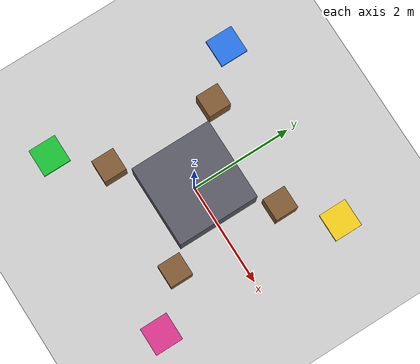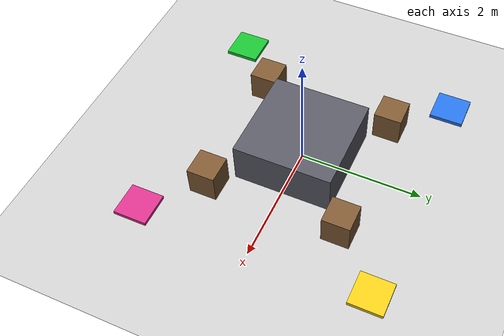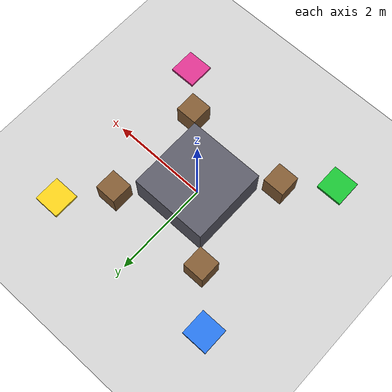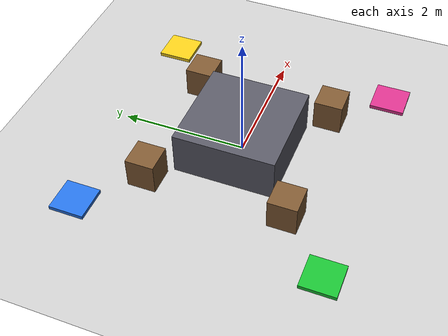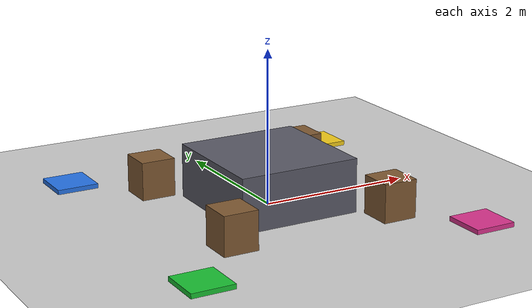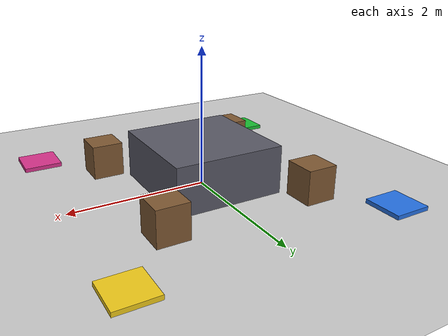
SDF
<sdf version="1.8">
 <world name="default">
  <physics type="ode">
   <real_time_update_rate>1000.0</real_time_update_rate>
   <max_step_size>0.001</max_step_size>
   <real_time_factor>1</real_time_factor>
   <ode>
    <solver>
     <type>quick</type>
     <iters>150</iters>
     <precon_iters>0</precon_iters>
     <sor>1.400000</sor>
     <use_dynamic_moi_rescaling>1</use_dynamic_moi_rescaling>
    </solver>
    <constraints>
     <cfm>0.00001</cfm>
     <erp>0.2</erp>
     <contact_max_correcting_vel>2000.000000</contact_max_correcting_vel>
     <contact_surface_layer>0.01000</contact_surface_layer>
    </constraints>
   </ode>
  </physics>
  <plugin filename="gz-sim-physics-system" name="gz::sim::systems::Physics"/>
  <plugin filename="gz-sim-user-commands-system" name="gz::sim::systems::UserCommands"/>
  <plugin filename="gz-sim-scene-broadcaster-system" name="gz::sim::systems::SceneBroadcaster"/>
  <plugin filename="gz-sim-sensors-system" name="gz::sim::systems::Sensors">
   <render_engine>ogre2</render_engine>
  </plugin>
  <plugin filename="gz-sim-imu-system" name="gz::sim::systems::Imu"/>
  <include><uri>https://fuel.gazebosim.org/1.0/OpenRobotics/models/Ground Plane</uri></include>
  <include><uri>https://fuel.gazebosim.org/1.0/OpenRobotics/models/Sun</uri></include>
  <model name="center_block">
   <static>true</static>
   <pose>0.000 0.000 0.350 0 0 0.0000</pose>
   <link name="link">
    <collision name="c"><geometry><box><size>1.600 1.600 0.700</size></box></geometry></collision>
    <visual name="v">
     <geometry><box><size>1.600 1.600 0.700</size></box></geometry>
     <material>
      <ambient>0.350 0.350 0.400 1</ambient>
      <diffuse>0.350 0.350 0.400 1</diffuse>
      <specular>0.2 0.2 0.2 1</specular>
     </material>
    </visual>
   </link>
  </model>
  <model name="chicane_nw">
   <static>true</static>
   <pose>-1.100 1.100 0.250 0 0 0.0000</pose>
   <link name="link">
    <collision name="c"><geometry><box><size>0.450 0.450 0.500</size></box></geometry></collision>
    <visual name="v">
     <geometry><box><size>0.450 0.450 0.500</size></box></geometry>
     <material>
      <ambient>0.500 0.350 0.200 1</ambient>
      <diffuse>0.500 0.350 0.200 1</diffuse>
      <specular>0.2 0.2 0.2 1</specular>
     </material>
    </visual>
   </link>
  </model>
  <model name="chicane_ne">
   <static>true</static>
   <pose>1.100 1.100 0.250 0 0 0.0000</pose>
   <link name="link">
    <collision name="c"><geometry><box><size>0.450 0.450 0.500</size></box></geometry></collision>
    <visual name="v">
     <geometry><box><size>0.450 0.450 0.500</size></box></geometry>
     <material>
      <ambient>0.500 0.350 0.200 1</ambient>
      <diffuse>0.500 0.350 0.200 1</diffuse>
      <specular>0.2 0.2 0.2 1</specular>
     </material>
    </visual>
   </link>
  </model>
  <model name="chicane_se">
   <static>true</static>
   <pose>1.100 -1.100 0.250 0 0 0.0000</pose>
   <link name="link">
    <collision name="c"><geometry><box><size>0.450 0.450 0.500</size></box></geometry></collision>
    <visual name="v">
     <geometry><box><size>0.450 0.450 0.500</size></box></geometry>
     <material>
      <ambient>0.500 0.350 0.200 1</ambient>
      <diffuse>0.500 0.350 0.200 1</diffuse>
      <specular>0.2 0.2 0.2 1</specular>
     </material>
    </visual>
   </link>
  </model>
  <model name="chicane_sw">
   <static>true</static>
   <pose>-1.100 -1.100 0.250 0 0 0.0000</pose>
   <link name="link">
    <collision name="c"><geometry><box><size>0.450 0.450 0.500</size></box></geometry></collision>
    <visual name="v">
     <geometry><box><size>0.450 0.450 0.500</size></box></geometry>
     <material>
      <ambient>0.500 0.350 0.200 1</ambient>
      <diffuse>0.500 0.350 0.200 1</diffuse>
      <specular>0.2 0.2 0.2 1</specular>
     </material>
    </visual>
   </link>
  </model>
  <model name="station_a">
   <static>true</static>
   <pose>-1.900 -1.900 0.030 0 0 0.0000</pose>
   <link name="link">
    <collision name="c"><geometry><box><size>0.550 0.550 0.060</size></box></geometry></collision>
    <visual name="v">
     <geometry><box><size>0.550 0.550 0.060</size></box></geometry>
     <material>
      <ambient>0.100 0.750 0.200 1</ambient>
      <diffuse>0.100 0.750 0.200 1</diffuse>
      <specular>0.2 0.2 0.2 1</specular>
     </material>
    </visual>
   </link>
  </model>
  <model name="station_b">
   <static>true</static>
   <pose>-1.900 1.900 0.030 0 0 0.0000</pose>
   <link name="link">
    <collision name="c"><geometry><box><size>0.550 0.550 0.060</size></box></geometry></collision>
    <visual name="v">
     <geometry><box><size>0.550 0.550 0.060</size></box></geometry>
     <material>
      <ambient>0.150 0.450 0.900 1</ambient>
      <diffuse>0.150 0.450 0.900 1</diffuse>
      <specular>0.2 0.2 0.2 1</specular>
     </material>
    </visual>
   </link>
  </model>
  <model name="station_c">
   <static>true</static>
   <pose>1.900 1.900 0.030 0 0 0.0000</pose>
   <link name="link">
    <collision name="c"><geometry><box><size>0.550 0.550 0.060</size></box></geometry></collision>
    <visual name="v">
     <geometry><box><size>0.550 0.550 0.060</size></box></geometry>
     <material>
      <ambient>0.950 0.800 0.100 1</ambient>
      <diffuse>0.950 0.800 0.100 1</diffuse>
      <specular>0.2 0.2 0.2 1</specular>
     </material>
    </visual>
   </link>
  </model>
  <model name="station_d">
   <static>true</static>
   <pose>1.900 -1.900 0.030 0 0 0.0000</pose>
   <link name="link">
    <collision name="c"><geometry><box><size>0.550 0.550 0.060</size></box></geometry></collision>
    <visual name="v">
     <geometry><box><size>0.550 0.550 0.060</size></box></geometry>
     <material>
      <ambient>0.850 0.200 0.550 1</ambient>
      <diffuse>0.850 0.200 0.550 1</diffuse>
      <specular>0.2 0.2 0.2 1</specular>
     </material>
    </visual>
   </link>
  </model>
 </world>
</sdf>
